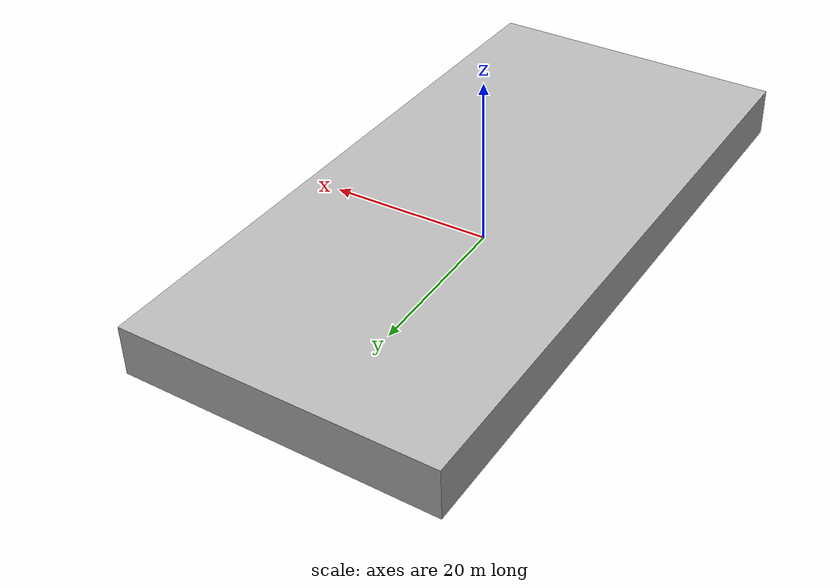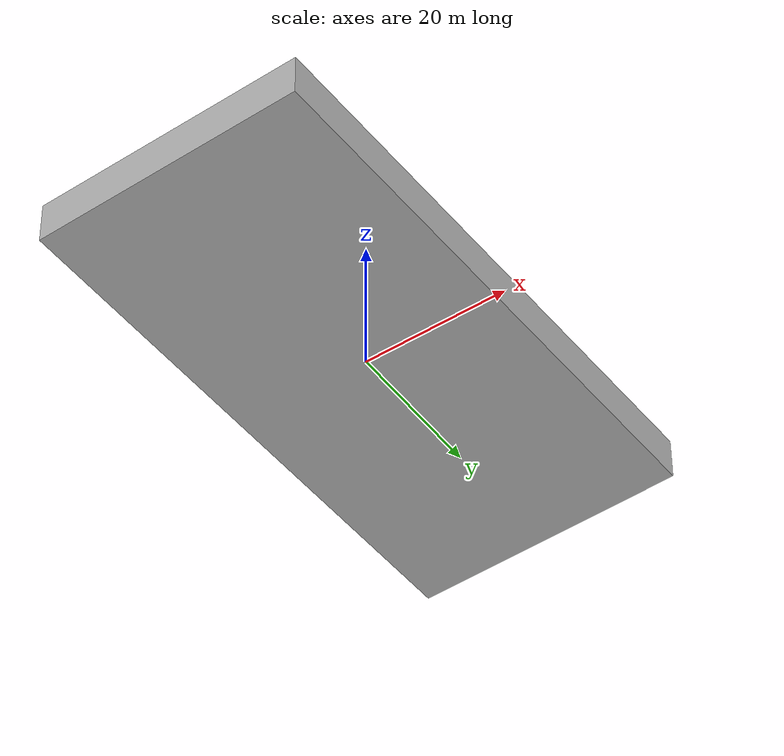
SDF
<?xml version="1.0" ?>
<sdf version="1.7">
  <model name="building_0029_assumed_a_campo_de_jogos">
    <static>true</static>
    <link name="building_link">
      <visual name="building_visual">
        <geometry>
          <mesh>
            <uri>model://building_0029_assumed_a_campo_de_jogos/meshes/construction_0029_assumed_A_Campo_de_jogos_h6m.obj</uri>
          </mesh>
        </geometry>
      </visual>
    <collision name="building_collision">
      <geometry>
        <mesh>
          <uri>model://building_0029_assumed_a_campo_de_jogos/meshes/construction_0029_assumed_A_Campo_de_jogos_h6m.obj</uri>
        </mesh>
      </geometry>
    </collision>
    </link>
  </model>
</sdf>
